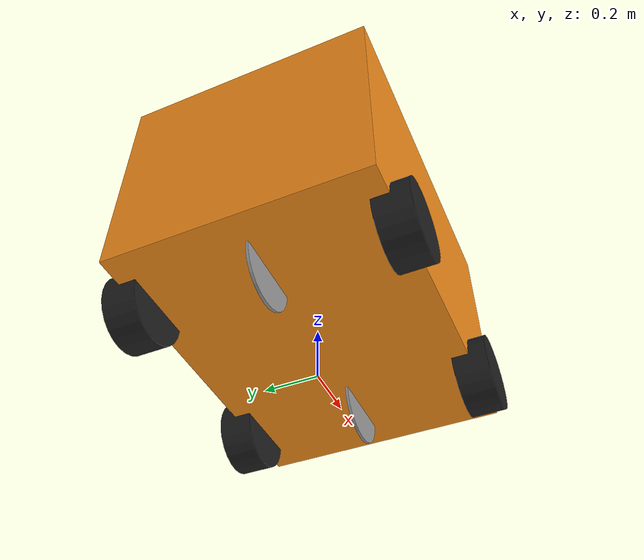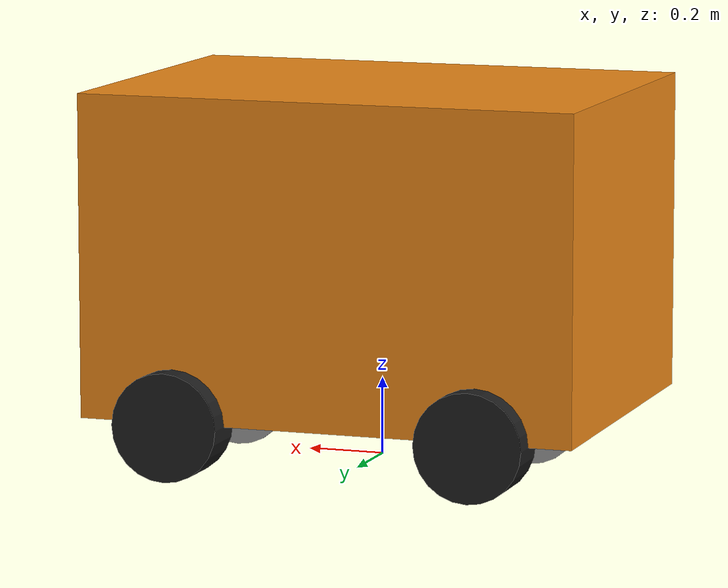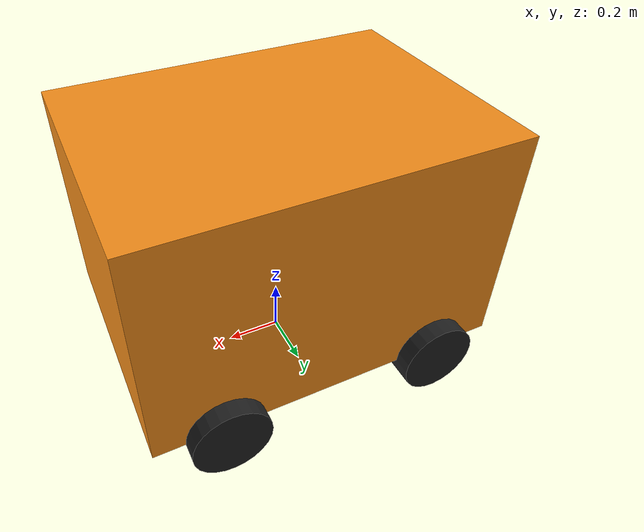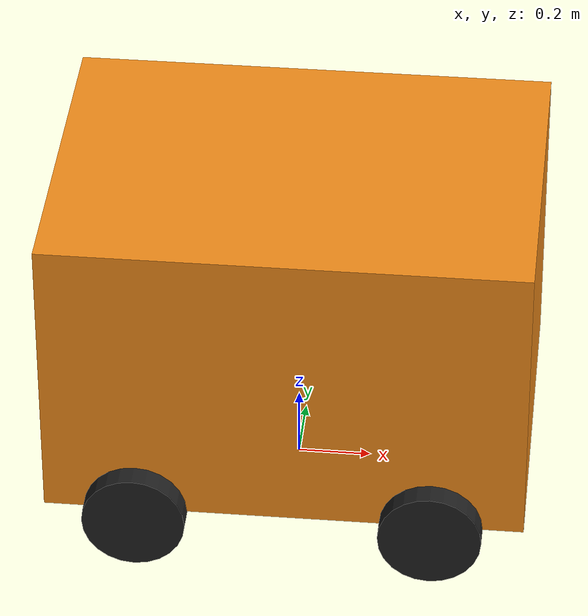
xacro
<?xml version="1.0"?>
<robot xmlns:xacro="http://www.ros.org/wiki/xacro" >
    <xacro:include filename="inertial_macros.xacro"/>
    <xacro:include filename="materials.xacro"/>

    <!-- Constants for robot dimensions -->
    <xacro:property name="PI" value="3.1415926535897931"/>
    <xacro:property name="base_mass" value="8.0" /> <!-- arbitrary value for base mass -->
    <xacro:property name="base_width" value="0.94" />
    <xacro:property name="base_length" value="1.3" />
    <xacro:property name="base_height" value="0.83" />
    <xacro:property name="wheelbase" value="0.8" />
    <xacro:property name="wheel_mass" value="0.34055" /> <!-- arbitrary value for wheel mass -->
    <xacro:property name="wheel_len" value="0.125" />
    <xacro:property name="wheel_radius" value="0.1397" />

    <!-- Base Link -->
    <link name="base_link" />
    <!-- BASE_FOOTPRINT LINK -->

    <joint name="base_footprint_joint" type="fixed">
        <parent link="base_link"/>
        <child link="base_footprint"/>
        <origin xyz="0 0 0" rpy="0 0 0"/>
    </joint>

    <link name="base_footprint">
    </link>

    <!-- Chassis -->

    <link name="chassis_link">
        <visual>
            <origin xyz="0 0 0" rpy="0 0 0"/>
            <geometry>
                <box size="${base_length} ${base_width} ${base_height}"/>
            </geometry>
            <material name="orange"/>
        </visual>
        <collision>
            <origin xyz="0 0 0" rpy="0 0 0"/>
            <geometry>
                <box size="${base_length} ${base_width} ${base_height}"/>
            </geometry>
        </collision>
        <inertial>
            <origin xyz="0 0 0" rpy="0 0 0"/>
            <mass value="${base_mass}"/>
            <inertia
                ixx="0.000270" ixy="0.0" ixz="0.0"
                iyy="0.000270" iyz="0.0"
                izz="0.000426"/>
        </inertial>
    </link>
    <gazebo reference="chassis_link">
        <material>Gazebo/Orange</material>
    </gazebo>

    <joint name="chassis_joint" type="fixed">
        <parent link="base_link"/>
        <child link="chassis_link"/>
        <origin xyz="0 0 ${base_height/2 + wheel_radius}" rpy="0 0 0"/>
        <axis xyz="0 0 1"/>
        <dynamics damping="0.2"/>
    </joint>

    <!-- rear wheels -->

    <!-- virtual rear wheel -->

    <link name="virtual_rear_wheel">
        <visual>
            <origin xyz="0 0 0" rpy="${PI/2} 0 ${PI/2}"/>
            <geometry>
                <cylinder length="0.01" radius="${wheel_radius}"/>
            </geometry>
            <material name="invisible"/>
        </visual>
        <collision>
            <origin xyz="0 0 0" rpy="${PI/2} 0 ${PI/2}"/>
            <geometry>
                <cylinder length="0.01" radius="${wheel_radius}"/>
            </geometry>
        </collision>
        <inertial>
            <origin xyz="0 0 0" rpy="${PI/2} 0 ${PI/2}"/>
            <mass value="${wheel_mass}"/>
            <inertia
                ixx="0.000270" ixy="0.0" ixz="0.0"
                iyy="0.000270" iyz="0.0"
                izz="0.000426"/>
        </inertial>
    </link>
    <gazebo reference="virtual_rear_wheel">
        <material>Gazebo/GreyTransparent</material>
    </gazebo>

    <joint name="virtual_rear_wheel_joint" type="continuous">
        <parent link="chassis_link"/>
        <child link="virtual_rear_wheel"/>
        <origin xyz="-${wheelbase/2} 0 -${base_height/2}" rpy="0 0 ${PI/2}"/>
        <axis xyz="1 0 0"/>
        <limit effort="100.0" velocity="100.0"/>
        <dynamics damping="0.2"/>
    </joint>

    <!-- rear right wheel -->

    <link name="rear_right_wheel">
        <visual>
            <origin xyz="0 0 0" rpy="${PI/2} 0 ${PI/2}"/>
            <geometry>
                <cylinder length="${wheel_len}" radius="${wheel_radius}"/>
            </geometry>
            <material name="black"/>
        </visual>
        <collision>
            <origin xyz="0 0 0" rpy="${PI/2} 0 ${PI/2}"/>
            <geometry>
                <cylinder length="${wheel_len}" radius="${wheel_radius}"/>
            </geometry>
        </collision>
        <inertial>
            <origin xyz="0 0 0" rpy="${PI/2} 0 ${PI/2}"/>
            <mass value="${wheel_mass}"/>
            <inertia
                ixx="0.000270" ixy="0.0" ixz="0.0"
                iyy="0.000270" iyz="0.0"
                izz="0.000426"/>
        </inertial>
    </link>
    <gazebo reference="rear_right_wheel">
        <material>Gazebo/Black</material>
    </gazebo>

    <joint name="rear_right_wheel_joint" type="continuous">
        <parent link="chassis_link"/>
        <child link="rear_right_wheel"/>
        <origin xyz="-${wheelbase/2} ${base_width/2} -${base_height/2}" rpy="0 0 ${PI/2}"/>
        <axis xyz="1 0 0"/>
        <limit effort="100.0" velocity="100.0"/>
        <dynamics damping="0.2"/>
        <mimic joint="virtual_rear_wheel_joint" multiplier="1.0" offset="0.0"/>
    </joint>

    <!-- rear left wheel -->
    <link name="rear_left_wheel">
        <visual>
            <origin xyz="0 0 0" rpy="${PI/2} 0 ${PI/2}"/>
            <geometry>
                <cylinder length="${wheel_len}" radius="${wheel_radius}"/>
            </geometry>
            <material name="black"/>
        </visual>
        <collision>
            <origin xyz="0 0 0" rpy="${PI/2} 0 ${PI/2}"/>
            <geometry>
                <cylinder length="${wheel_len}" radius="${wheel_radius}"/>
            </geometry>
        </collision>
        <inertial>
            <origin xyz="0 0 0" rpy="${PI/2} 0 ${PI/2}"/>
            <mass value="${wheel_mass}"/>
            <inertia
            ixx="0.000270" ixy="0.0" ixz="0.0"
            iyy="0.000270" iyz="0.0"
            izz="0.000426"/>
        </inertial>
    </link>
    <gazebo reference="rear_left_wheel">
        <material>Gazebo/Blue</material>
    </gazebo>

    <joint name="rear_left_wheel_joint" type="continuous">
        <parent link="chassis_link" />
        <child link="rear_left_wheel" />
        <origin xyz="-${wheelbase/2} -${base_width/2} -${base_height/2}" rpy="0 0 ${PI/2}"/>
        <axis xyz="1 0 0"/>
        <limit effort="100.0" velocity="100.0"/>
        <dynamics damping="0.2"/>
        <mimic joint="virtual_rear_wheel_joint" multiplier="1.0" offset="0.0"/>
    </joint>

    <!-- front wheels -->

    <!-- virtual front wheel -->

    <link name="virtual_front_wheel">
        <visual>
        <origin xyz="0 0 0" rpy="${PI/2} 0 ${PI/2}"/>
        <geometry>
            <cylinder length="0.01" radius="${wheel_radius}"/>
        </geometry>
        <material name="invisible"/>
        </visual>
        <collision>
                <origin xyz="0 0 0" rpy="${PI/2} 0 ${PI/2}"/>
                <geometry>
                    <cylinder length="0.01" radius="${wheel_radius}"/>
                </geometry>
        </collision>
        <inertial>
                <origin xyz="0 0 0" rpy="${PI/2} 0 ${PI/2}"/>
                <mass value="${wheel_mass}"/>
                <inertia
                    ixx="0.000270" ixy="0.0" ixz="0.0"
                    iyy="0.000270" iyz="0.0"
                    izz="0.000426"/>
        </inertial>
    </link>
    <gazebo reference="virtual_front_wheel">
        <material>Gazebo/GreyTransparent</material>
    </gazebo>

    <joint name="virtual_front_wheel_joint" type="revolute">
        <parent link="chassis_link"/>
        <child link="virtual_front_wheel"/>
        <origin xyz="${wheelbase/2} 0 -${base_height/2}" rpy="0 0 ${PI/2}"/>
        <axis xyz="0 0 1"/>
        <limit lower="-0.4" upper="0.4" effort="100.0" velocity="0.0"/>
        <dynamics damping="0.2"/>
    </joint>

    <!-- front right wheel -->

    <link name="front_right_wheel">
        <visual>
            <origin xyz="0 0 0" rpy="${PI/2} 0 ${PI/2}"/>
            <geometry>
                <cylinder length="${wheel_len}" radius="${wheel_radius}"/>
            </geometry>
            <material name="black"/>
        </visual>
        <collision>
            <origin xyz="0 0 0" rpy="${PI/2} 0 ${PI/2}"/>
            <geometry>
                <cylinder length="${wheel_len}" radius="${wheel_radius}"/>
            </geometry>
        </collision>
        <inertial>
            <origin xyz="0 0 0" rpy="${PI/2} 0 ${PI/2}"/>
            <mass value="${wheel_mass}"/>
            <inertia
                ixx="0.000270" ixy="0.0" ixz="0.0"
                iyy="0.000270" iyz="0.0"
                izz="0.000426"/>
        </inertial>
    </link>
    <gazebo reference="front_right_wheel">
        <material>Gazebo/Blue</material>
    </gazebo>

    <joint name="front_right_wheel_joint" type="revolute">
        <parent link="chassis_link" />
        <child link="front_right_wheel" />
        <origin xyz="${wheelbase/2} ${base_width/2} -${base_height/2}" rpy="0 0 ${PI/2}"/>
        <axis xyz="0 0 1"/>
        <limit lower="-0.4" upper="0.4" effort="100.0" velocity="0.0"/>
        <dynamics damping="0.2"/>
    </joint>

    <!-- front left steering -->

    <link name="front_left_wheel">
        <visual>
            <origin xyz="0 0 0" rpy="${PI/2} 0 ${PI/2}"/>
            <geometry>
                <cylinder length="${wheel_len}" radius="${wheel_radius}"/>
            </geometry>
            <material name="black"/>
        </visual>
        <collision>
            <origin xyz="0 0 0" rpy="${PI/2} 0 ${PI/2}"/>
            <geometry>
                <cylinder length="${wheel_len}" radius="${wheel_radius}"/>
            </geometry>
        </collision>
        <inertial>
            <origin xyz="0 0 0" rpy="${PI/2} 0 ${PI/2}"/>
            <mass value="${wheel_mass}"/>
            <inertia
                ixx="0.000270" ixy="0.0" ixz="0.0"
                iyy="0.000270" iyz="0.0"
                izz="0.000426"/>
        </inertial>

    </link>
    <gazebo reference="front_left_wheel">
        <material>Gazebo/Blue</material>
    </gazebo>

    <joint name="front_left_wheel_joint" type="revolute">
        <parent link="chassis_link" />
        <child link="front_left_wheel" />
        <origin xyz="${wheelbase/2} -${base_width/2} -${base_height/2}" rpy="0 0 ${PI/2}"/>
        <axis xyz="0 0 1"/>
        <limit lower="-0.4" upper="0.4" effort="100.0" velocity="0.0"/>
        <dynamics damping="0.2"/>
    </joint>
    <gazebo>
        <plugin name="gazebo_ros_ackermann_drive" filename="libgazebo_ros_ackermann_drive.so">

            <update_rate>50.0</update_rate>

            <!-- wheels -->
            <front_left_joint>front_left_wheel_joint</front_left_joint>
            <front_right_joint>front_right_wheel_joint</front_right_joint>
            <rear_left_joint>rear_left_wheel_joint</rear_left_joint>
            <rear_right_joint>rear_right_wheel_joint</rear_right_joint>

            <left_steering_joint>front_left_steer_joint</left_steering_joint>
            <right_steering_joint>front_right_steer_joint</right_steering_joint>
            <rear_left_joint>virtual_rear_wheel_joint</rear_left_joint>
            <rear_right_joint>virtual_rear_wheel_joint</rear_right_joint>

            <!-- steering joints -->

            <!-- Max absolute steer angle for tyre in radians-->
            <!-- Any cmd_vel angular z greater than this would be capped -->
            <max_steer>0.4</max_steer>

            <!-- Max absolute steering angle of steering wheel -->
            <max_steering_angle>0.4</max_steering_angle>

            <!-- Max absolute linear speed in m/s -->
            <max_speed>100</max_speed>

            <!-- PID tuning -->
            <left_steering_pid_gain>10 10 0.5</left_steering_pid_gain>
            <left_steering_i_range>0 0</left_steering_i_range>
            <right_steering_pid_gain>10.0 10 0.5</right_steering_pid_gain>
            <right_steering_i_range>0 0</right_steering_i_range>

            <linear_velocity_pid_gain>3 0.0001 0.015</linear_velocity_pid_gain>
            <linear_velocity_i_range>0 0</linear_velocity_i_range>

            <!-- output -->
            <publish_odom>true</publish_odom>
            <publish_odom_tf>true</publish_odom_tf>
            <publish_wheel_tf>true</publish_wheel_tf>
            <publish_distance>true</publish_distance>
            <publish_steerangle>true</publish_steerangle>
            <odometry_frame>odom</odometry_frame>
            <robot_base_frame>base_link</robot_base_frame>

        </plugin>
    </gazebo>

</robot>
